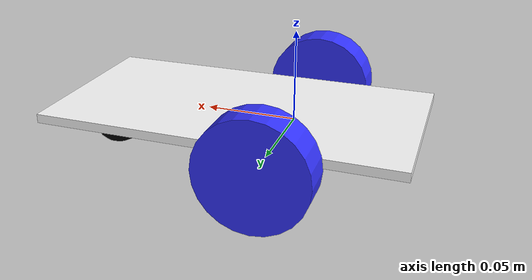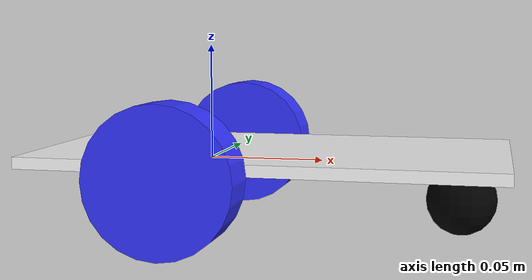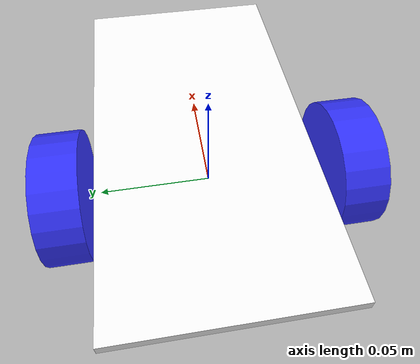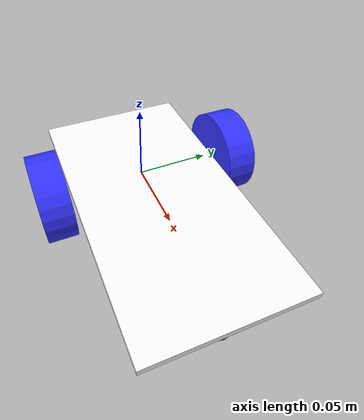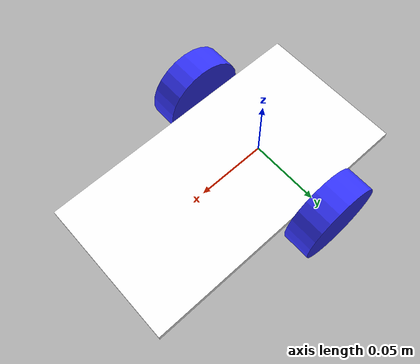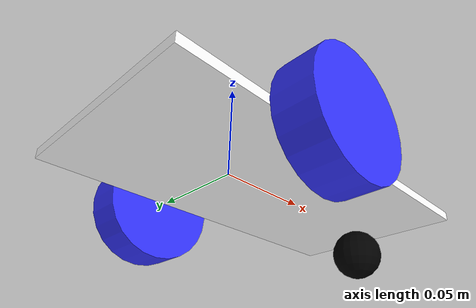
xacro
<?xml version="1.0"?>
<robot xmlns:xacro="http://www.ros.org/wiki/xacro">

    <xacro:include filename="inertial_macros.xacro" />

    <material name="white">
    <color rgba="1 1 1 1"/>
    </material>

    <material name="orange">
        <color rgba="1 0.3 0.1 1"/>
    </material>

    <material name="blue">
        <color rgba="0.2 0.2 1 1"/>
    </material>

    <material name="black">
        <color rgba="0 0 0 1"/>
    </material>

    <link name="base_link">
    </link>

    <!-- CHASIS -->

    <joint name="chassis_joint" type="fixed">
        <parent link="base_link"/>
        <child link="chassis"/>
        <origin xyz="-0.07 0 0"/>
    </joint>

    <link name="chassis">
        <visual>
            <origin xyz="0.10 0 0.0025" rpy="0 0 0"/>
            <geometry>
                <box size="0.2 0.105 0.005"/>
            </geometry>
            <material name="white"/>
        </visual>
        <collision>
            <origin xyz="0.10 0 0.0025" rpy="0 0 0"/>
            <geometry>
                <box size="0.2 0.105 0.005"/>
            </geometry>
        </collision>
        <xacro:inertial_box mass="0.2" x="0.2" y="0.105" z="0.005">
            <origin xyz="0.10 0 0.0025" rpy="0 0 0"/>
        </xacro:inertial_box>
    </link>
    <gazebo reference="chassis">
        <material>
            Gazebo/White
        </material>
    </gazebo>

    <!-- LEFT WHEEL -->

    <joint name="left_wheel_joint" type="continuous">
        <parent link="base_link"/>
        <child link="left_wheel"/>
        <origin xyz="0 0.065 0" rpy="-${pi/2} 0 0"/>
        <axis xyz="0 0 1"/>
    </joint>

    <link name="left_wheel">
        <visual>
            <geometry>
                <cylinder length="0.02" radius="0.03" />
            </geometry>
            <material name="blue"/>
        </visual>
        <collision>
            <geometry>
                <cylinder length="0.02" radius="0.03" />
            </geometry>
        </collision>
        <xacro:inertial_cylinder mass="0.1" length="0.02" radius="0.03">
            <origin xyz="0 0 0" rpy="0 0 0"/>
        </xacro:inertial_cylinder>
    </link>
    <gazebo reference="left_wheel">
        <material>
            Gazebo/Blue
        </material>
    </gazebo>

    <!-- RIGHT WHEEL -->

    <joint name="right_wheel_joint" type="continuous">
        <parent link="base_link"/>
        <child link="right_wheel"/>
        <origin xyz="0 -0.065 0" rpy="${pi/2} 0 0"/>
        <axis xyz="0 0 -1"/>
    </joint>

    <link name="right_wheel">
        <visual>
            <geometry>
                <cylinder length="0.02" radius="0.03" />
            </geometry>
            <material name="blue"/>
        </visual>
        <collision>
            <geometry>
                <cylinder length="0.02" radius="0.03" />
            </geometry>
        </collision>
        <xacro:inertial_cylinder mass="0.1" length="0.02" radius="0.03">
            <origin xyz="0 0 0" rpy="0 0 0"/>
        </xacro:inertial_cylinder>
    </link>
    <gazebo reference="right_wheel">
        <material>
            Gazebo/Blue
        </material>
    </gazebo>

    <!-- CASTER WHEEL -->

    <joint name="caster_wheel_joint" type="fixed">
        <parent link="base_link"/>
        <child link="caster_wheel"/>
        <origin xyz="0.11 0 -0.015" rpy="0 0 0"/>
    </joint>

    <link name="caster_wheel">
        <visual>
            <geometry>
                <sphere radius="0.015" />
            </geometry>
            <material name="black"/>
        </visual>
        <collision>
            <geometry>
                <sphere radius="0.015" />
            </geometry>
        </collision>
        <xacro:inertial_sphere mass="0.1" radius="0.015">
            <origin xyz="0 0 0" rpy="0 0 0"/>
        </xacro:inertial_sphere>
    </link>
    <gazebo reference="caster_wheel">
        <material>Gazebo/Black</material>
        <mu1 value="0.001"/>
        <mu2 value="0.001"/>
    </gazebo>

</robot>
